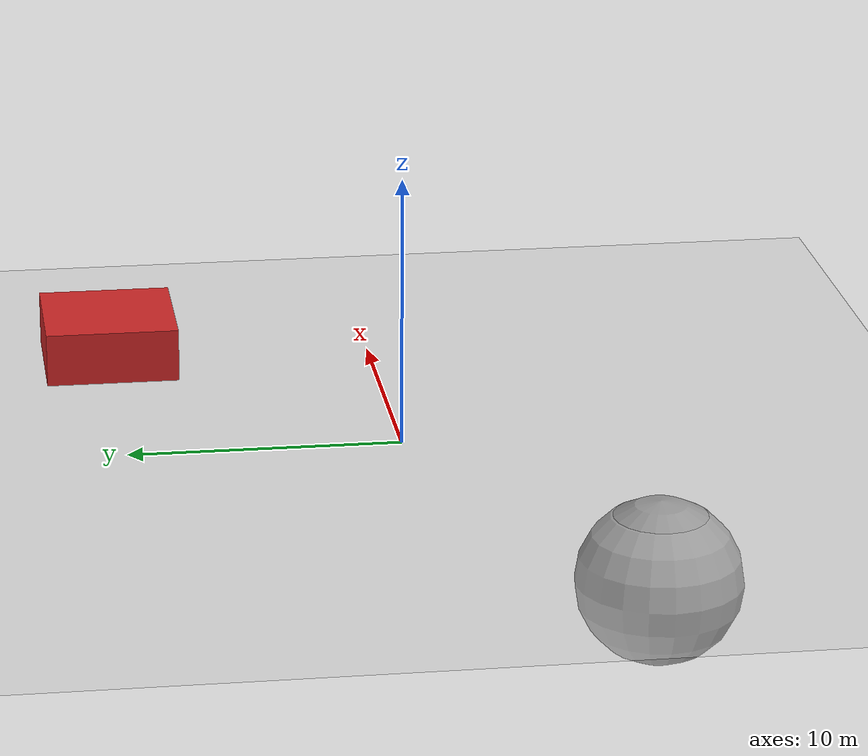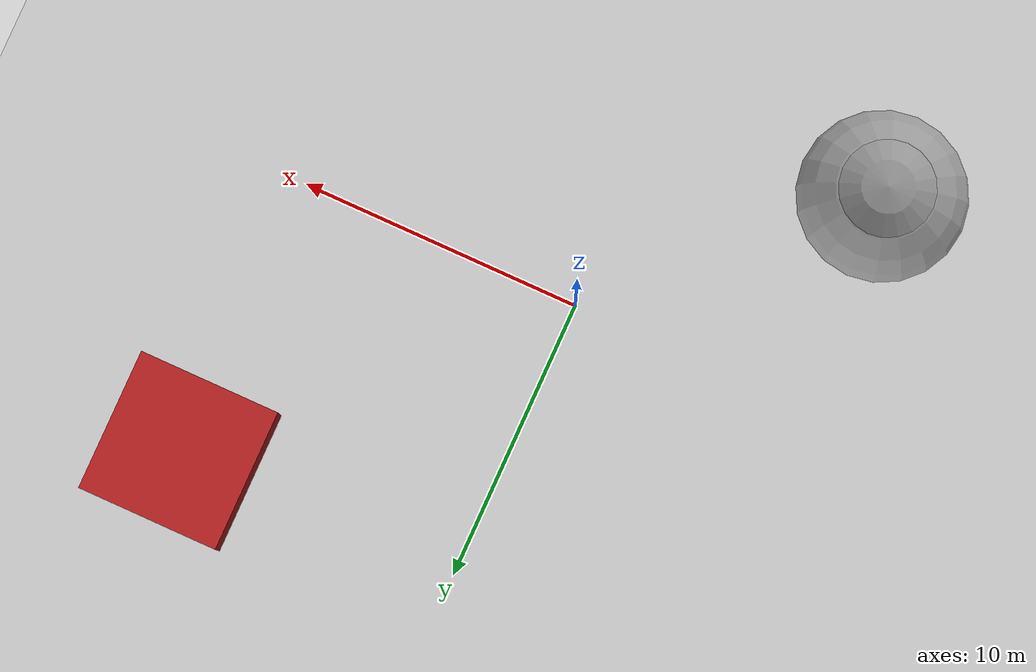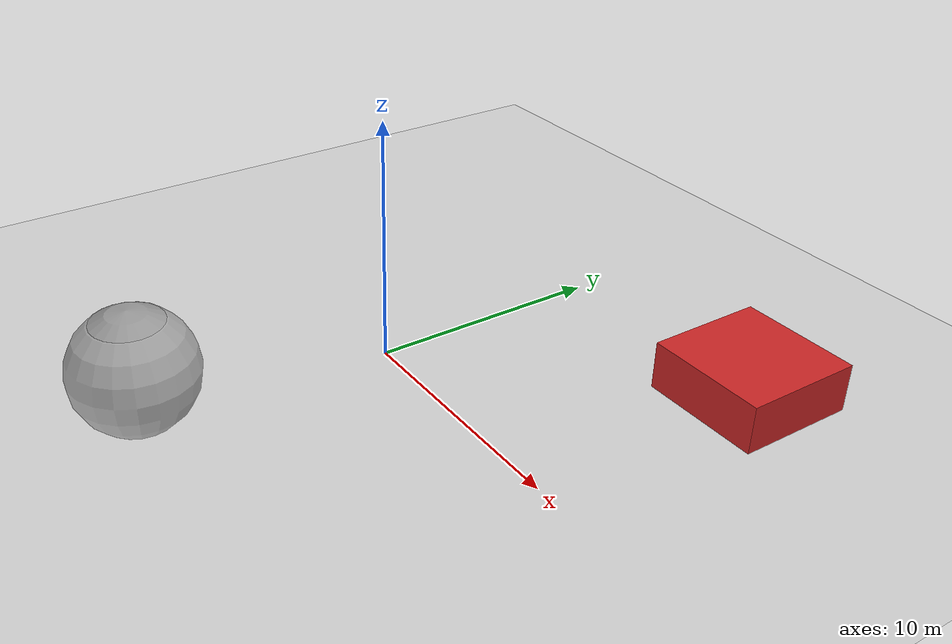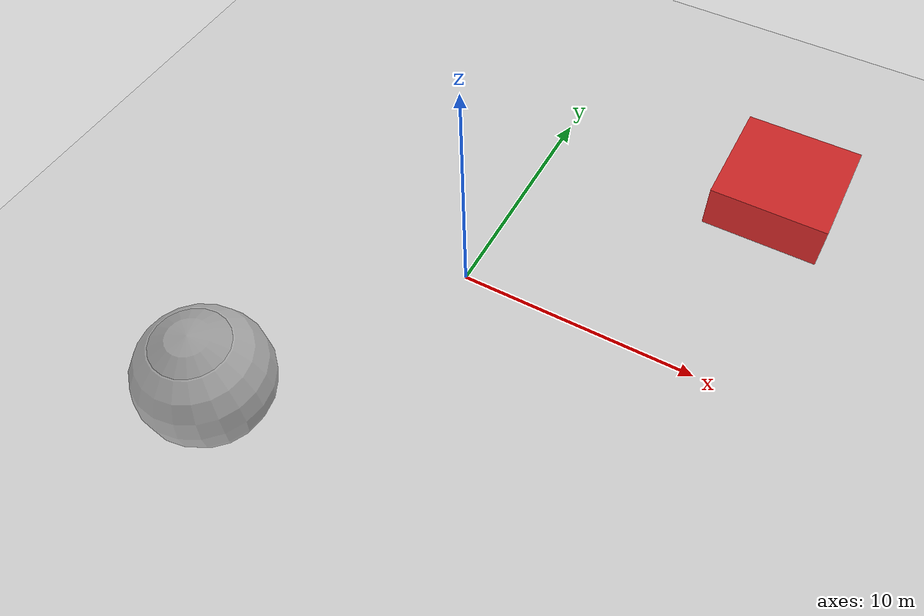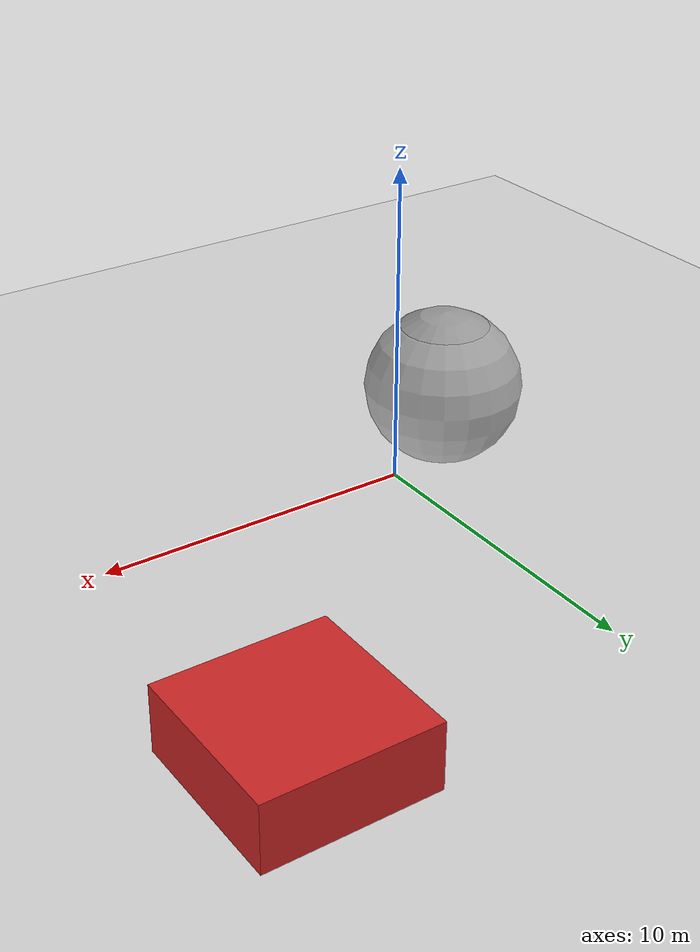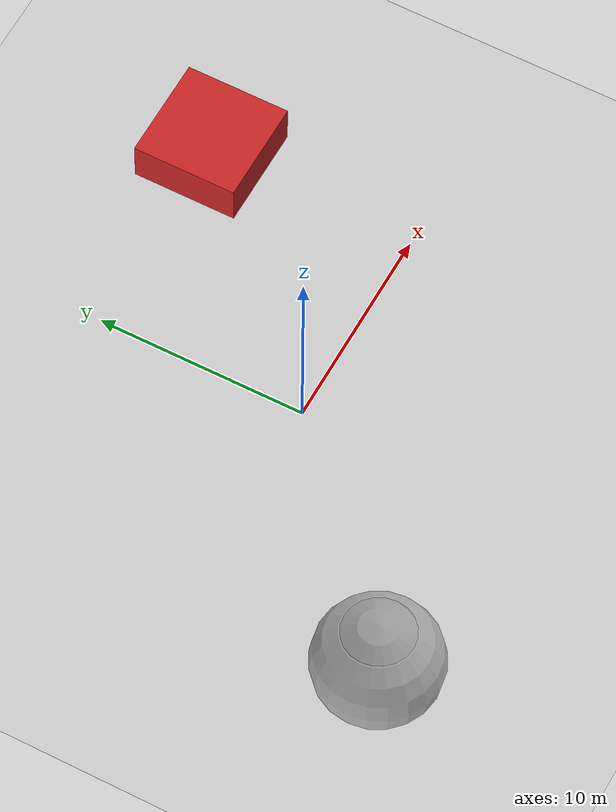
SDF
<?xml version="1.0" ?>
<sdf version="1.6">
  <world name="mars_world">
    <!-- A global light source -->
    <include>
      <uri>model://sun</uri>
    </include>

    <!-- Mars gravity -->
    <physics type="ode">
      <gravity>0 0 -3.711</gravity>
      <ode>
        <solver>
          <type>quick</type>
          <iters>100</iters>
          <sor>1.0</sor>
        </solver>
        <constraints>
          <cfm>0.0</cfm>
          <erp>0.2</erp>
          <contact_max_correcting_vel>100.0</contact_max_correcting_vel>
          <contact_surface_layer>0.001</contact_surface_layer>
        </constraints>
      </ode>
      <max_step_size>0.001</max_step_size>
      <real_time_factor>1.0</real_time_factor>
      <real_time_update_rate>1000</real_time_update_rate>
    </physics>

    <!-- Mars-like ground plane -->
    <model name="mars_ground_plane">
      <static>true</static>
      <link name="link">
        <collision name="collision">
          <geometry>
            <plane>
              <normal>0 0 1</normal>
              <size>100 100</size>
            </plane>
          </geometry>
          <surface>
            <friction>
              <ode>
                <mu>0.8</mu>
                <mu2>0.8</mu2>
              </ode>
            </friction>
          </surface>
        </collision>
        <visual name="visual">
          <cast_shadows>false</cast_shadows>
          <geometry>
            <plane>
              <normal>0 0 1</normal>
              <size>100 100</size>
            </plane>
          </geometry>
          <material>
            <script>
              <uri>file://media/materials/scripts/gazebo.material</uri>
              <name>Gazebo/Mars</name>
            </script>
          </material>
        </visual>
      </link>
    </model>

    <!-- Add some Mars-like terrain features -->
    <model name="mars_hill1">
      <static>true</static>
      <link name="link">
        <collision name="collision">
          <geometry>
            <box>
              <size>5 5 2</size>
            </box>
          </geometry>
        </collision>
        <visual name="visual">
          <geometry>
            <box>
              <size>5 5 2</size>
            </box>
          </geometry>
          <material>
            <script>
              <uri>file://media/materials/scripts/gazebo.material</uri>
              <name>Gazebo/Red</name>
            </script>
          </material>
        </visual>
        <pose>10 10 1 0 0 0</pose>
      </link>
    </model>

    <model name="mars_crater1">
      <static>true</static>
      <link name="link">
        <collision name="collision">
          <geometry>
            <sphere>
              <radius>3</radius>
            </sphere>
          </geometry>
        </collision>
        <visual name="visual">
          <geometry>
            <sphere>
              <radius>3</radius>
            </sphere>
          </geometry>
          <material>
            <script>
              <uri>file://media/materials/scripts/gazebo.material</uri>
              <name>Gazebo/Grey</name>
            </script>
          </material>
        </visual>
        <pose>-8 -8 -2.5 0 0 0</pose>
      </link>
    </model>

    <!-- Mars atmosphere settings -->
    <atmosphere type="adiabatic">
      <temperature>20.0</temperature>
      <pressure>600.0</pressure>
      <temperature_gradient>-0.0065</temperature_gradient>
    </atmosphere>

    <!-- Mars-like sky -->
    <scene>
      <ambient>0.8 0.6 0.4 1</ambient>
      <background>0.9 0.7 0.5 1</background>
      <shadows>true</shadows>
    </scene>

  </world>
</sdf>
